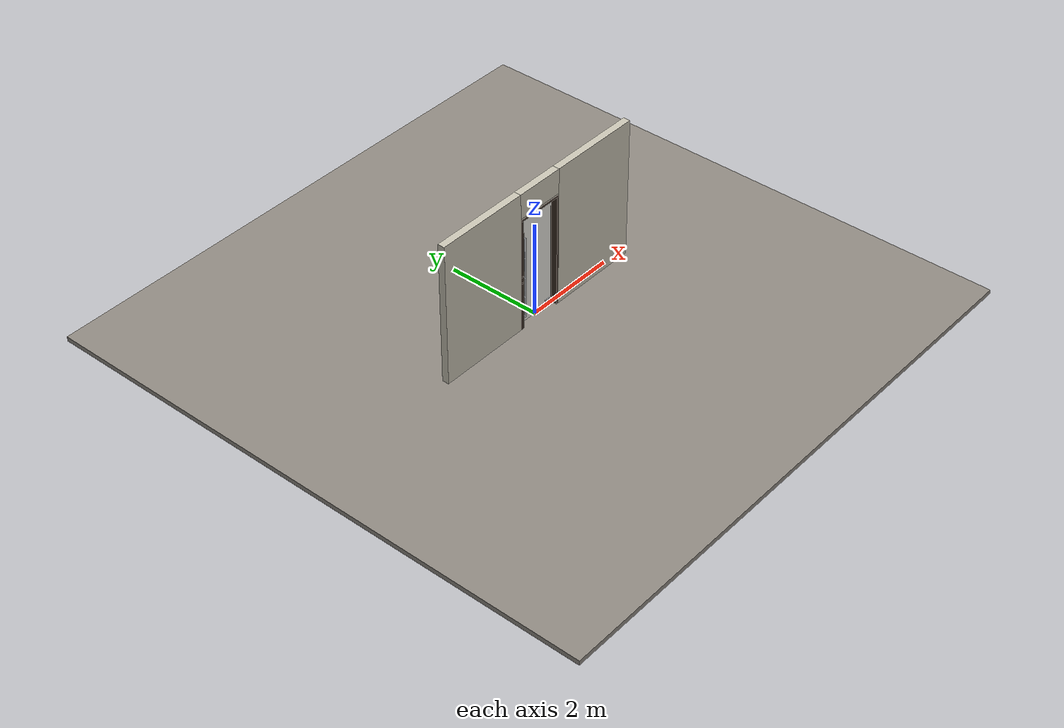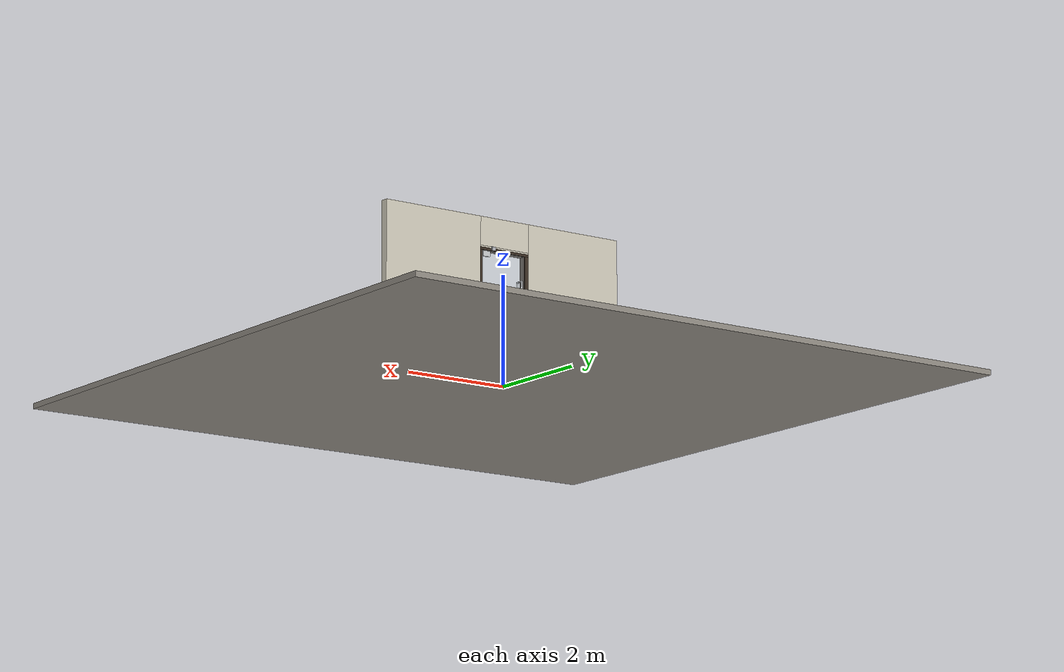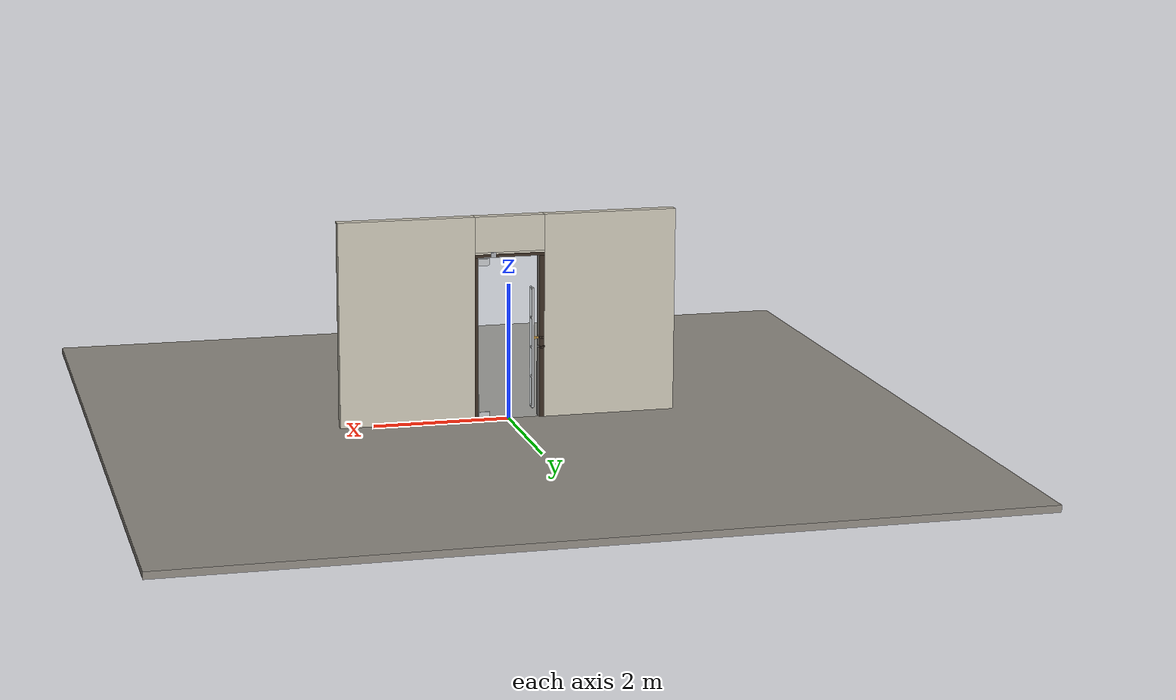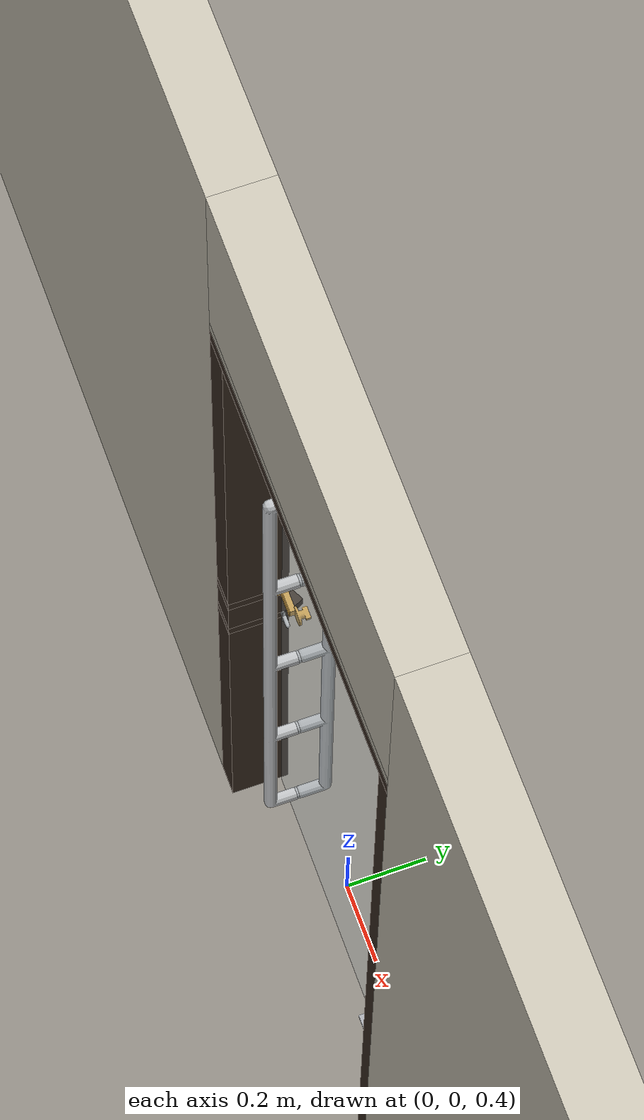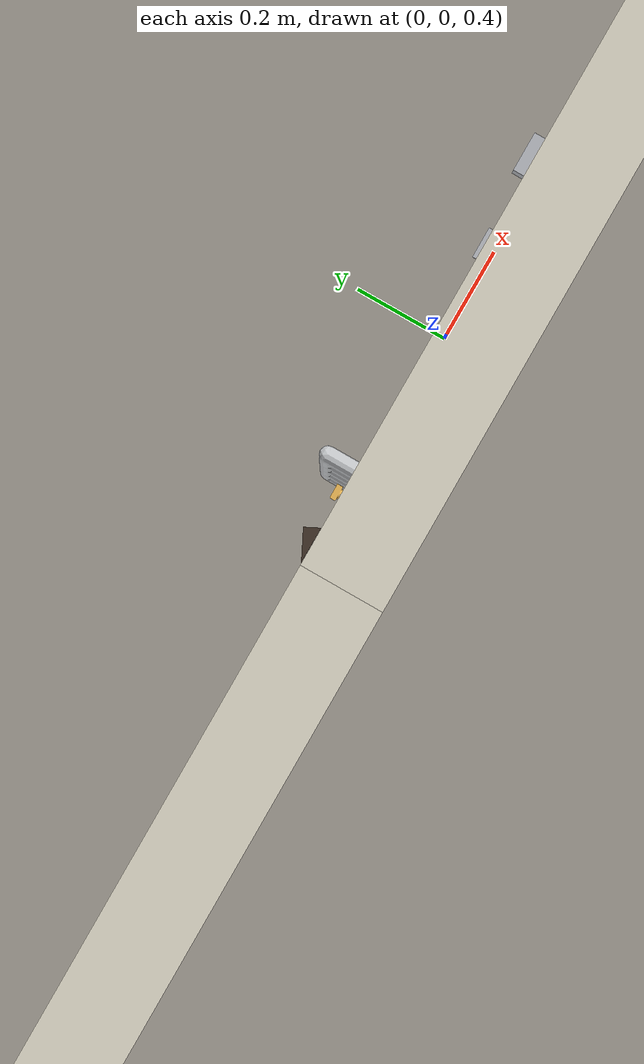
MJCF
<?xml version="1.0" ?>
<mujoco model="db0161_pivot_full">
  <compiler angle="radian" meshdir="../../hardware" texturedir="../../textures" autolimits="true" inertiafromgeom="false"/>
  <option timestep="0.002" integrator="implicitfast" cone="elliptic" impratio="10" noslip_iterations="3">
    <flag multiccd="enable"/>
  </option>
  <size memory="16M"/>
  <default>
    <geom condim="4" solref="0.005 1" solimp="0.95 0.99 0.001"/>
    <joint solreflimit="0.005 1" solimplimit="0.95 0.99 0.001"/>
    <tendon solreflimit="0.005 1"/>
    <equality solref="0.002 1"/>
  </default>
  <visual>
    <headlight ambient="0.4 0.4 0.4" diffuse="0.7 0.7 0.7" specular="0.2 0.2 0.2"/>
    <quality shadowsize="4096"/>
    <map znear="0.01" zfar="60"/>
  </visual>
  <asset>
    <mesh name="pull_897e207f65" file="pull_897e207f65.obj"/>
    <mesh name="thumbturn_eb5c9899a3" file="thumbturn_eb5c9899a3.obj"/>
    <material name="mat_floor" rgba="0.55 0.53 0.5 1" specular="0.2" shininess="0.15" reflectance="0"/>
    <material name="mat_wall" rgba="0.78 0.76 0.7 1" specular="0.2" shininess="0.1" reflectance="0"/>
    <material name="mat_leaf" rgba="0.85 0.92 0.95 0.25" specular="0.2" shininess="0.95" reflectance="0.1"/>
    <material name="mat_glass_leaf" rgba="0.85 0.92 0.95 0.25" specular="0.2" shininess="0.95" reflectance="0.1"/>
    <material name="mat_patch" rgba="0.75 0.76 0.77 1" specular="0.8" shininess="0.65" reflectance="0.4"/>
    <material name="mat_hinge" rgba="0.65 0.66 0.68 1" specular="0.74" shininess="0.5" reflectance="0.36"/>
    <material name="mat_op_stainless" rgba="0.75 0.76 0.77 1" specular="0.8" shininess="0.65" reflectance="0.4"/>
    <material name="mat_bolt" rgba="0.75 0.76 0.77 1" specular="0.8" shininess="0.65" reflectance="0.4"/>
    <material name="mat_deadbolt" rgba="0.85 0.66 0.3 1" specular="0.8" shininess="0.75" reflectance="0.4"/>
    <material name="mat_frame" rgba="0.22 0.17 0.13 1" specular="0.8" shininess="0.6" reflectance="0.4"/>
    <texture name="skybox" type="skybox" builtin="gradient" rgb1="0.6 0.7 0.85" rgb2="0.9 0.92 0.95" width="256" height="256"/>
  </asset>
  <worldbody>
    <light name="sun" pos="1.5 -2.5 4" dir="-0.3 0.5 -0.8" directional="true" diffuse="0.8 0.8 0.8" specular="0.3 0.3 0.3" castshadow="true"/>
    <light name="fill" pos="-1.5 2.5 3" dir="0.3 -0.5 -0.7" directional="true" diffuse="0.35 0.35 0.4" castshadow="false"/>
    <camera name="robot_view" pos="0 -2.94575 2.01415" xyaxes="1 0 0 0 0.26963 0.962964" fovy="52"/>
    <camera name="far_view" pos="0 2.82675 2.01415" xyaxes="-1 0 0 0 -0.26963 0.962964" fovy="52"/>
    <camera name="iso" pos="-2.19355 -2.48395 2.47595" xyaxes="0.741536 -0.670913 0 0.242917 0.268487 0.932151" fovy="46"/>
    <camera name="detail_handle" pos="-0.165 -0.871 1.33" xyaxes="0.97561 0.219512 0 -0.070934 0.315262 0.94635" fovy="38"/>
    <geom name="floor" type="box" size="6 6 0.05" pos="0 0 -0.05" material="mat_floor" group="0" contype="1" conaffinity="1" friction="0.8 0.005 0.0001" density="2400"/>
    <geom name="wall_left" type="box" size="0.9845 0.0725 1.506" pos="-1.5155 -0.0595 1.506" material="mat_wall" group="0" contype="1" conaffinity="1" friction="0.6 0.005 0.0001" density="800"/>
    <geom name="wall_right" type="box" size="0.9995 0.0725 1.506" pos="1.5005 -0.0595 1.506" material="mat_wall" group="0" contype="1" conaffinity="1" friction="0.6 0.005 0.0001" density="800"/>
    <geom name="wall_header" type="box" size="0.516 0.0725 0.2625" pos="-0.015 -0.0595 2.7495" material="mat_wall" group="0" contype="1" conaffinity="1" friction="0.6 0.005 0.0001" density="800"/>
    <geom name="pivot_bottom_socket" type="box" size="0.035 0.035 0.008" pos="0.231 0 -0.002" material="mat_hinge" group="1" contype="0" conaffinity="0" density="7850"/>
    <geom name="pivot_top_bracket" type="box" size="0.035 0.035 0.0355" pos="0.231 0 2.4515" material="mat_hinge" group="1" contype="0" conaffinity="0" density="7850"/>
    <geom name="leaf_deadbolt_strike_b" type="box" size="0.0155 0.003 0.0005" pos="-0.4555 0 1.1715" quat="0.5 0.5 0.5 0.5" material="mat_deadbolt" group="1" contype="0" conaffinity="0" density="7800"/>
    <geom name="leaf_deadbolt_strike_l" type="box" size="0.003 0.0155 0.0005" pos="-0.4555 -0.0125 1.19" quat="0.5 0.5 0.5 0.5" material="mat_deadbolt" group="1" contype="0" conaffinity="0" density="7800"/>
    <geom name="leaf_deadbolt_strike_t" type="box" size="0.0155 0.003 0.0005" pos="-0.4555 0 1.2085" quat="0.5 0.5 0.5 0.5" material="mat_deadbolt" group="1" contype="0" conaffinity="0" density="7800"/>
    <geom name="leaf_deadbolt_strike_r" type="box" size="0.003 0.0155 0.0005" pos="-0.4555 0.0125 1.19" quat="0.5 0.5 0.5 0.5" material="mat_deadbolt" group="1" contype="0" conaffinity="0" density="7800"/>
    <geom name="jamb_hinge" type="box" size="0.0225 0.0725 1.206" pos="0.4785 -0.0595 1.206" material="mat_frame" group="0" contype="1" conaffinity="1" friction="0.6 0.005 0.0001" density="300"/>
    <geom name="strike_1050_wall_n" type="box" size="0.0375 0.06275 0.015" pos="-0.4935 -0.06925 1.05" material="mat_frame" group="0" contype="1" conaffinity="1" friction="0.6 0.005 0.0001" density="300"/>
    <geom name="strike_1050_wall_p" type="box" size="0.0375 0.008 0.015" pos="-0.4935 0.0145 1.05" material="mat_frame" group="0" contype="1" conaffinity="1" friction="0.6 0.005 0.0001" density="300"/>
    <geom name="strike_1050_ramp" type="box" size="0.0375 0.016771 0.015" pos="-0.497041 0.020729 1.05" quat="0.973249 0 0 0.229753" material="mat_frame" group="0" contype="1" conaffinity="1" friction="0.12 0.005 0.0001" density="300"/>
    <geom name="strike_1050_back" type="box" size="0.0285 0.0065 0.015" pos="-0.5025 0 1.05" material="mat_frame" group="0" contype="1" conaffinity="1" friction="0.6 0.005 0.0001" density="300"/>
    <geom name="strike_1190_wall_n" type="box" size="0.0375 0.06125 0.0155" pos="-0.4935 -0.07075 1.19" material="mat_frame" group="0" contype="1" conaffinity="1" friction="0.6 0.005 0.0001" density="300"/>
    <geom name="strike_1190_wall_p" type="box" size="0.0157 0.003 0.0155" pos="-0.4717 0.0125 1.19" material="mat_frame" group="0" contype="1" conaffinity="1" friction="0.6 0.005 0.0001" density="300"/>
    <geom name="strike_1190_back" type="box" size="0.0228 0.0095 0.0155" pos="-0.5082 0 1.19" material="mat_frame" group="0" contype="1" conaffinity="1" friction="0.6 0.005 0.0001" density="300"/>
    <geom name="jamb_strike_0" type="box" size="0.0375 0.0725 0.5175" pos="-0.4935 -0.0595 0.5175" material="mat_frame" group="0" contype="1" conaffinity="1" friction="0.6 0.005 0.0001" density="300"/>
    <geom name="jamb_strike_1" type="box" size="0.0375 0.0725 0.05475" pos="-0.4935 -0.0595 1.11975" material="mat_frame" group="0" contype="1" conaffinity="1" friction="0.6 0.005 0.0001" density="300"/>
    <geom name="jamb_strike_2" type="box" size="0.0375 0.0725 0.60325" pos="-0.4935 -0.0595 1.80875" material="mat_frame" group="0" contype="1" conaffinity="1" friction="0.6 0.005 0.0001" density="300"/>
    <geom name="jamb_head" type="box" size="0.516 0.0725 0.0225" pos="-0.015 -0.0595 2.4345" material="mat_frame" group="0" contype="1" conaffinity="1" friction="0.6 0.005 0.0001" density="300"/>
    <geom name="head_stud" type="box" size="0.516 0.0725 0.015" pos="-0.015 -0.0595 2.472" material="mat_wall" group="0" contype="1" conaffinity="1" friction="0.6 0.005 0.0001" density="500"/>
    <site name="approach_point" pos="0 -1.5 0" quat="1 0 0 0" size="0.05" rgba="0.2 0.9 0.2 0.5" group="4"/>
    <site name="goal_point" pos="0 1.5 0" quat="1 0 0 0" size="0.05" rgba="0.2 0.9 0.2 0.5" group="4"/>
    <site name="door_plane_center" pos="0 0 1.206" quat="1 0 0 0" size="0.02" rgba="0.2 0.9 0.2 0.5" group="4"/>
    <body name="leaf" pos="0.456 0 0">
      <inertial pos="-0.749909 0 1.073072" mass="75.605545" quat="0.493804 -0.493804 0.50612 0.50612" diaginertia="2.203259713 23.376503701 24.954310098"/>
      <joint name="leaf_hinge" type="hinge" axis="0 0 -1" pos="-0.225 0 0" limited="true" range="0 1.570796" solreflimit="0.02 1" damping="0.33438" frictionloss="1.61549" armature="0.02"/>
      <geom name="leaf_glass" type="box" size="0.45 0.006 1.2" pos="-0.456 0 1.208" material="mat_glass_leaf" group="0" contype="1" conaffinity="1" friction="0.4 0.005 0.0001" density="1"/>
      <geom name="leaf_patch_bot" type="box" size="0.08 0.014 0.05" pos="-0.086 0 0.068" material="mat_patch" group="1" contype="0" conaffinity="0" density="1"/>
      <geom name="leaf_patch_top" type="box" size="0.08 0.014 0.05" pos="-0.086 0 2.348" material="mat_patch" group="1" contype="0" conaffinity="0" density="1"/>
      <geom name="pivot_bottom" type="cylinder" size="0.014 0.004" pos="-0.225 0 0.003" material="mat_hinge" group="1" contype="0" conaffinity="0" density="7850"/>
      <geom name="pivot_top" type="cylinder" size="0.014 0.004" pos="-0.225 0 2.412" material="mat_hinge" group="1" contype="0" conaffinity="0" density="7850"/>
      <geom name="leaf_pull_n" type="mesh" mesh="pull_897e207f65" pos="-0.801 -0.006 1.05" quat="0 0 -0.707107 0.707107" material="mat_op_stainless" group="1" contype="0" conaffinity="0" density="3000"/>
      <geom name="leaf_pull_col_n" type="capsule" size="0.016 0.88" pos="-0.801 -0.071 1.05" material="mat_op_stainless" group="3" contype="1" conaffinity="1" rgba="0.8 0.3 0.3 0.25" friction="0.7 0.01 0.0001" density="3000"/>
      <geom name="leaf_pull_p" type="mesh" mesh="pull_897e207f65" pos="-0.801 0.006 1.05" quat="0 0 0.707107 0.707107" material="mat_op_stainless" group="1" contype="0" conaffinity="0" density="3000"/>
      <geom name="leaf_pull_col_p" type="capsule" size="0.016 0.88" pos="-0.801 0.071 1.05" material="mat_op_stainless" group="3" contype="1" conaffinity="1" rgba="0.8 0.3 0.3 0.25" friction="0.7 0.01 0.0001" density="3000"/>
      <geom name="leaf_latch_bolt_faceplate" type="box" size="0.0006 0.004 0.025" pos="-0.9054 0 1.05" material="mat_bolt" group="1" contype="0" conaffinity="0" density="8500"/>
      <geom name="leaf_deadbolt_faceplate" type="box" size="0.0006 0.004 0.0245" pos="-0.9054 0 1.19" material="mat_deadbolt" group="1" contype="0" conaffinity="0" density="8500"/>
      <site name="leaf_pull_grip_n" pos="-0.801 -0.071 1.05" quat="1 0 0 0" size="0.012" rgba="0.2 0.9 0.2 0.5" group="4"/>
      <site name="leaf_pull_grip_p" pos="-0.801 0.071 1.05" quat="1 0 0 0" size="0.012" rgba="0.2 0.9 0.2 0.5" group="4"/>
      <site name="leaf_edge_mid" pos="-0.906 0 1.2" quat="1 0 0 0" size="0.02" rgba="0.2 0.9 0.2 0.5" group="4"/>
      <body name="leaf_latch_bolt" pos="-0.906 0 1.05">
        <inertial pos="0.008 0 0" mass="0.027149" quat="0 0 -0.707107 0.707107" diaginertia="0.000000328 0.000003943 0.000003943"/>
        <joint name="leaf_latch_bolt_slide" type="slide" axis="1 0 0" limited="true" range="0 0.014" damping="2" frictionloss="0.3" stiffness="400" springref="-0.01" armature="0.1"/>
        <geom name="leaf_latch_bolt_capsule" type="capsule" size="0.005 0.017" pos="0.008 0 0" quat="0.707107 0 -0.707107 0" material="mat_bolt" group="0" contype="1" conaffinity="1" friction="0.2 0.005 0.0001" density="8500"/>
      </body>
      <body name="leaf_deadbolt" pos="-0.906 0 1.19">
        <inertial pos="0.0277 0 0" mass="0.18836" quat="0 0 0.707107 0.707107" diaginertia="0.000013829 0.000052194 0.000057986"/>
        <joint name="leaf_deadbolt_slide" type="slide" axis="1 0 0" limited="true" range="0 0.0254" damping="5" frictionloss="1.5" armature="0.1" ref="0.0254"/>
        <geom name="leaf_deadbolt_box" type="box" size="0.0277 0.008 0.0125" pos="0.0277 0 0" material="mat_deadbolt" group="0" contype="1" conaffinity="1" friction="0.3 0.005 0.0001" density="8500"/>
      </body>
      <body name="leaf_deadbolt_thumbturn" pos="-0.841 0.006 1.19">
        <inertial pos="0 0.012928 0" mass="0.178946" quat="0.000001 -0.707107 0.707107 -0.000001" diaginertia="0.000026045 0.000026215 0.000032438"/>
        <joint name="leaf_deadbolt_thumbturn_hinge" type="hinge" axis="0 -1 0" limited="true" range="0 1.5708" damping="0.05" frictionloss="0.3" armature="0.005" ref="1.5708"/>
        <geom name="leaf_deadbolt_thumbturn_mesh" type="mesh" mesh="thumbturn_eb5c9899a3" pos="0 0 0" quat="0.500001 -0.500001 0.499999 0.499999" material="mat_deadbolt" group="0" contype="1" conaffinity="1" friction="0.6 0.005 0.0001" density="7100"/>
        <geom name="leaf_deadbolt_thumbturn_col" type="box" size="0.006 0.012 0.016" pos="0 0.02 0" quat="0.707105 0 -0.707108 0" material="mat_deadbolt" group="3" contype="1" conaffinity="1" rgba="0.8 0.3 0.3 0.25" friction="0.6 0.005 0.0001" density="7100"/>
      </body>
    </body>
  </worldbody>
  <equality>
    <joint name="leaf_deadbolt_couple" joint1="leaf_deadbolt_slide" joint2="leaf_deadbolt_thumbturn_hinge" polycoef="0 0.01617 0 0 0" active="true"/>
  </equality>
  <contact>
    <exclude body1="leaf_deadbolt" body2="leaf_deadbolt_thumbturn"/>
  </contact>
  <sensor>
    <jointpos name="leaf_hinge_pos" joint="leaf_hinge"/>
    <jointvel name="leaf_hinge_vel" joint="leaf_hinge"/>
    <jointpos name="leaf_latch_bolt_slide_pos" joint="leaf_latch_bolt_slide"/>
    <jointvel name="leaf_latch_bolt_slide_vel" joint="leaf_latch_bolt_slide"/>
    <jointpos name="leaf_deadbolt_slide_pos" joint="leaf_deadbolt_slide"/>
    <jointvel name="leaf_deadbolt_slide_vel" joint="leaf_deadbolt_slide"/>
    <jointpos name="leaf_deadbolt_thumbturn_hinge_pos" joint="leaf_deadbolt_thumbturn_hinge"/>
    <jointvel name="leaf_deadbolt_thumbturn_hinge_vel" joint="leaf_deadbolt_thumbturn_hinge"/>
  </sensor>
</mujoco>
